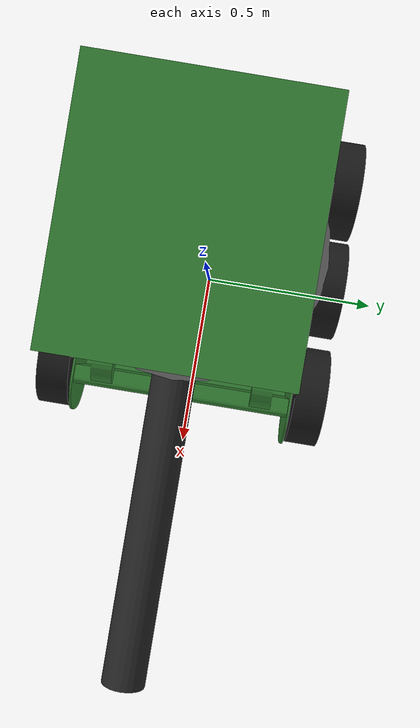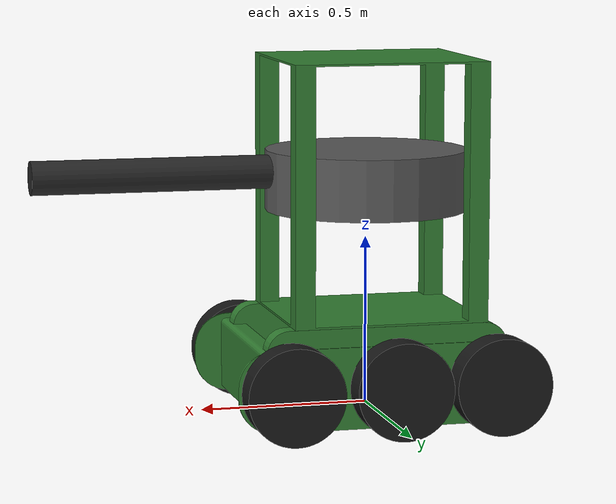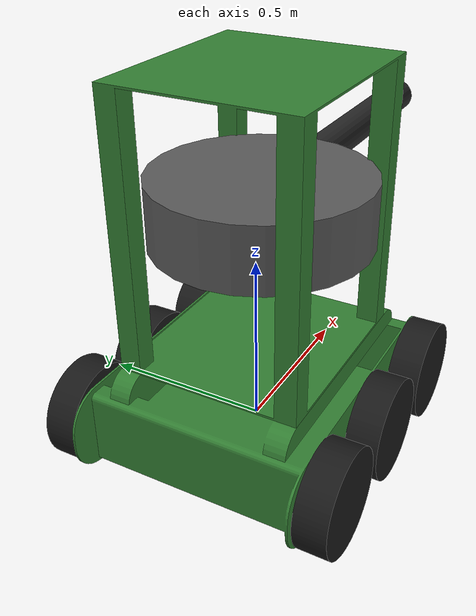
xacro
<?xml version="1.0"?>
<robot name="tank" xmlns:xacro="http://www.ros.org/wiki/xacro">
  <xacro:arg name="prefix" default="player"/>
  <xacro:arg name="body_color" default="Gazebo/Green"/>
  <xacro:arg name="turret_color" default="Gazebo/DarkGrey"/>
  <xacro:property name="prefix" value="$(arg prefix)"/>
  <xacro:property name="body_color" value="$(arg body_color)"/>
  <xacro:property name="turret_color" value="$(arg turret_color)"/>
  <!-- mesh 原始单位 mm,URDF 用 m;×3 放大故 scale=0.001×3 -->
  <xacro:property name="s" value="0.003"/>

  <!-- ====== 底盘(源自 zthanxx,惯量/坐标按 ×3 等比换算)====== -->
  <link name="base_link">
    <inertial>
      <origin xyz="-0.006 -0.021 0.0928" rpy="0 0 0"/>
      <mass value="260.9"/>
      <inertia ixx="0.4528" iyy="0.7841" izz="1.0945" ixy="0.0" iyz="0.0" ixz="-0.000117"/>
    </inertial>
    <visual>
      <origin xyz="0 0 0" rpy="0 0 0"/>
      <geometry>
        <mesh filename="package://tank_description/meshes/base_link.stl" scale="${s} ${s} ${s}"/>
      </geometry>
      <material name="body_mat"><color rgba="0.2 0.5 0.2 1"/></material>
    </visual>
    <collision>
      <origin xyz="0 0 0.1" rpy="0 0 0"/>
      <geometry>
        <box size="0.85 0.55 0.2"/>
      </geometry>
    </collision>
  </link>

  <!-- ====== 6 个轮子(视觉用原 STL;碰撞用等效圆柱,轴对 y)====== -->
  <xacro:macro name="wheel" params="name origin_y joint_origin_x mesh_x_offset flip">
    <link name="${name}">
      <inertial>
        <origin xyz="0 ${origin_y} 0" rpy="0 0 0"/>
        <mass value="45.07"/>
        <inertia ixx="0.0096" iyy="0.01695" izz="0.0096" ixy="0.0" iyz="0.0" ixz="0.0"/>
      </inertial>
      <visual>
        <origin xyz="${mesh_x_offset} ${-origin_y} -0.105" rpy="0 0 0"/>
        <geometry>
          <mesh filename="package://tank_description/meshes/${name}.stl" scale="${s} ${s} ${s}"/>
        </geometry>
        <material name="wheel_mat"><color rgba="0.1 0.1 0.1 1"/></material>
      </visual>
      <collision>
        <origin xyz="${mesh_x_offset} ${-origin_y} -0.105" rpy="1.5708 0 0"/>
        <geometry>
          <cylinder radius="0.195" length="0.12"/>
        </geometry>
      </collision>
    </link>
    <joint name="${name}_joint" type="fixed">
      <origin xyz="${joint_origin_x} ${origin_y} 0.105" rpy="0 0 0"/>
      <parent link="base_link"/>
      <child link="${name}"/>
    </joint>
  </xacro:macro>
  <!-- 坐标均为原模型值×3;zthanxx 的视觉偏移与关节位置 y 符号相反,保持原样 -->
  <xacro:wheel name="rw1_link_1" origin_y="-0.3405" joint_origin_x="0.3"    mesh_x_offset="-0.3"   flip="1"/>
  <xacro:wheel name="rw2_link_1" origin_y="-0.3405" joint_origin_x="-0.0075" mesh_x_offset="0.0075"  flip="1"/>
  <xacro:wheel name="rw3_link_1" origin_y="-0.3405" joint_origin_x="-0.315"  mesh_x_offset="0.315"  flip="1"/>
  <xacro:wheel name="lw1_link_1" origin_y="0.2985"  joint_origin_x="0.3015"  mesh_x_offset="-0.3015" flip="1"/>
  <xacro:wheel name="lw2_link_1" origin_y="0.2985"  joint_origin_x="-0.006"  mesh_x_offset="-0.006"  flip="1"/>
  <xacro:wheel name="lw3_link_1" origin_y="0.2985"  joint_origin_x="-0.3135" mesh_x_offset="0.3135"  flip="1"/>

  <!-- ====== 车体上层平台(源自 zthanxx frame)====== -->
  <link name="frame_1">
    <inertial>
      <origin xyz="0 0 0.381" rpy="0 0 0"/>
      <mass value="112.7"/>
      <inertia ixx="0.478" iyy="0.536" izz="0.425" ixy="0.0" iyz="0.0" ixz="0.0"/>
    </inertial>
    <visual>
      <origin xyz="-0.006 0.021 -0.27" rpy="0 0 0"/>
      <geometry>
        <mesh filename="package://tank_description/meshes/frame_1.stl" scale="${s} ${s} ${s}"/>
      </geometry>
      <material name="body_mat"/>
    </visual>
    <collision>
      <origin xyz="0 0 0.1" rpy="0 0 0"/>
      <geometry>
        <box size="0.6 0.4 0.05"/>
      </geometry>
    </collision>
  </link>
  <joint name="frame_joint" type="fixed">
    <origin xyz="-0.006 -0.021 0.27" rpy="0 0 0"/>
    <parent link="base_link"/>
    <child link="frame_1"/>
  </joint>

  <!-- ====== 炮塔(本项目自加;continuous 关节由 ros2_control 驱动)====== -->
  <link name="turret">
    <inertial>
      <origin xyz="0 0 0" rpy="0 0 0"/>
      <mass value="60.0"/>
      <inertia ixx="1.51" iyy="1.51" izz="2.7" ixy="0.0" iyz="0.0" ixz="0.0"/>
    </inertial>
    <visual>
      <origin xyz="0 0 0" rpy="0 0 0"/>
      <geometry>
        <cylinder radius="0.3" length="0.18"/>
      </geometry>
      <material name="turret_mat"><color rgba="0.35 0.35 0.35 1"/></material>
    </visual>
    <collision>
      <origin xyz="0 0 0" rpy="0 0 0"/>
      <geometry>
        <cylinder radius="0.3" length="0.18"/>
      </geometry>
    </collision>
  </link>
  <joint name="turret_joint" type="continuous">
    <origin xyz="0 0 0.4" rpy="0 0 0"/>
    <parent link="frame_1"/>
    <child link="turret"/>
    <axis xyz="0 0 1"/>
    <limit effort="1000" velocity="3.0"/>
  </joint>

  <!-- ====== 炮管(沿 x 伸出,固定在炮塔)====== -->
  <link name="barrel">
    <inertial>
      <origin xyz="0 0 0" rpy="0 0 0"/>
      <mass value="20.0"/>
      <inertia ixx="0.025" iyy="1.07" izz="1.07" ixy="0.0" iyz="0.0" ixz="0.0"/>
    </inertial>
    <visual>
      <origin xyz="0 0 0" rpy="0 1.5708 0"/>
      <geometry>
        <cylinder radius="0.05" length="0.8"/>
      </geometry>
      <material name="barrel_mat"><color rgba="0.15 0.15 0.15 1"/></material>
    </visual>
    <collision>
      <origin xyz="0 0 0" rpy="0 1.5708 0"/>
      <geometry>
        <cylinder radius="0.05" length="0.8"/>
      </geometry>
    </collision>
  </link>
  <joint name="barrel_joint" type="fixed">
    <origin xyz="0.6 0 0.03" rpy="0 0 0"/>
    <parent link="turret"/>
    <child link="barrel"/>
  </joint>

  <!-- ====== 炮口(空 link:batch 4 计算炮弹出生点的参考系)====== -->
  <link name="muzzle"/>
  <joint name="muzzle_joint" type="fixed">
    <origin xyz="1.0 0 0.03" rpy="0 0 0"/>
    <parent link="turret"/>
    <child link="muzzle"/>
  </joint>

  <!-- ====== ROS2 控制:炮塔位置控制(ros2_control 标准结构)====== -->
  <ros2_control name="TankSystem" type="system">
    <hardware>
      <plugin>gazebo_ros2_control/GazeboSystem</plugin>
    </hardware>
    <joint name="turret_joint">
      <command_interface name="position"/>
      <state_interface name="position">
        <param name="initial_position">0.0</param>
      </state_interface>
      <state_interface name="velocity"/>
    </joint>
  </ros2_control>

  <!-- ====== Gazebo 插件 ====== -->
  <!-- 底盘:平面运动(直接吃 cmd_vel 的 x+yaw,坦克开起来,永不翻车) -->
  <gazebo>
    <plugin name="tank_planar_move_${prefix}" filename="libgazebo_ros_planar_move.so">
      <update_rate>100</update_rate>
      <ros>
        <remapping>cmd_vel:=/${prefix}/cmd_vel</remapping>
        <remapping>odom:=/${prefix}/odom</remapping>
      </ros>
      <command_topic>cmd_vel</command_topic>
      <odometry_topic>odom</odometry_topic>
      <odometry_frame>odom</odometry_frame>
      <robot_base_frame>base_link</robot_base_frame>
    </plugin>
  </gazebo>
  <gazebo>
    <plugin name="gazebo_ros2_control" filename="libgazebo_ros2_control.so">
      <ros>
        <namespace>/${prefix}</namespace>
      </ros>
      <robot_param>robot_description</robot_param>
      <robot_param_node>/${prefix}/robot_state_publisher</robot_param_node>
      <parameters>$(find tank_description)/controllers/tank_controllers.yaml</parameters>
    </plugin>
  </gazebo>

  <!-- ====== Gazebo 外观/摩擦(材质在 Gazebo 里由这些标签决定,URDF material 对 mesh 不生效)====== -->
  <gazebo reference="base_link">
    <material>${body_color}</material>
    <mu1>1.0</mu1><mu2>1.0</mu2>
  </gazebo>
  <gazebo reference="frame_1">
    <material>${body_color}</material>
    <mu1>1.0</mu1><mu2>1.0</mu2>
  </gazebo>
  <gazebo reference="turret">
    <material>${turret_color}</material>
    <mu1>1.0</mu1><mu2>1.0</mu2>
  </gazebo>
  <gazebo reference="barrel">
    <material>Gazebo/Black</material>
    <mu1>1.0</mu1><mu2>1.0</mu2>
  </gazebo>
  <xacro:macro name="wheel_gz" params="name">
    <gazebo reference="${name}">
      <material>Gazebo/Black</material>
      <mu1>1.0</mu1><mu2>1.0</mu2>
    </gazebo>
  </xacro:macro>
  <xacro:wheel_gz name="rw1_link_1"/><xacro:wheel_gz name="rw2_link_1"/><xacro:wheel_gz name="rw3_link_1"/>
  <xacro:wheel_gz name="lw1_link_1"/><xacro:wheel_gz name="lw2_link_1"/><xacro:wheel_gz name="lw3_link_1"/>

</robot>
